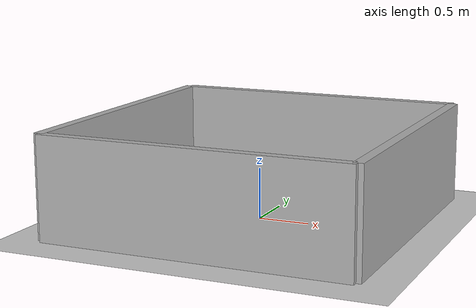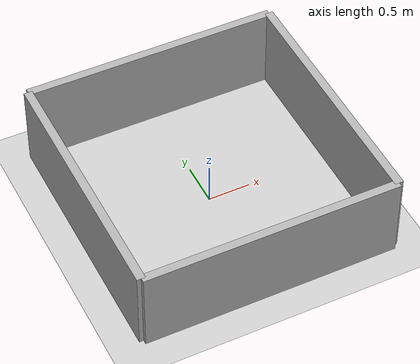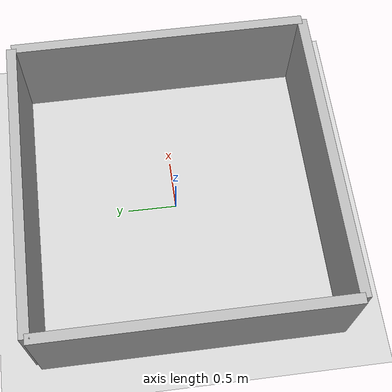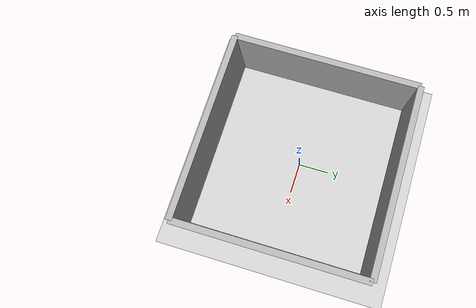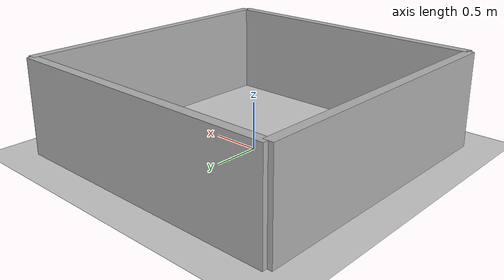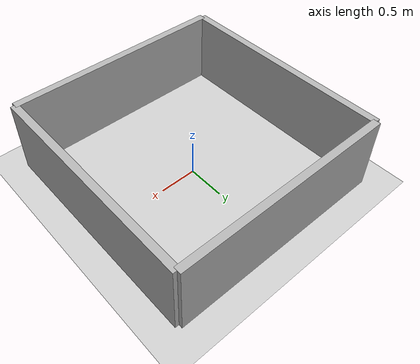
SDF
<?xml version="1.0" ?>
<sdf version="1.6">
  <world name="small_room_world">
    <!-- Set gravity and physics properties -->
    <gravity>0 0 -9.81</gravity>
    <physics type="ode">
      <real_time_update_rate>1000</real_time_update_rate>
      <max_step_size>0.001</max_step_size>
    </physics>

    <!-- Include a ground plane -->
    <include>
      <uri>model://ground_plane</uri>
    </include>

    <!-- Add walls to form a 3x3 room -->
    <model name="room_walls">
      <static>true</static>

      <!-- Wall 1: Front -->
      <link name="wall1">
        <pose>0 1.5 0.5 0 0 0</pose>
        <collision name="wall1_collision">
          <geometry>
            <box>
              <size>3 0.1 1</size>
            </box>
          </geometry>
        </collision>
        <visual name="wall1_visual">
          <geometry>
            <box>
              <size>3 0.1 1</size>
            </box>
          </geometry>
          <material>
            <ambient>0.7 0.7 0.7 1</ambient>
          </material>
        </visual>
      </link>

      <!-- Wall 2: Back -->
      <link name="wall2">
        <pose>0 -1.5 0.5 0 0 0</pose>
        <collision name="wall2_collision">
          <geometry>
            <box>
              <size>3 0.1 1</size>
            </box>
          </geometry>
        </collision>
        <visual name="wall2_visual">
          <geometry>
            <box>
              <size>3 0.1 1</size>
            </box>
          </geometry>
          <material>
            <ambient>0.7 0.7 0.7 1</ambient>
          </material>
        </visual>
      </link>

      <!-- Wall 3: Left -->
      <link name="wall3">
        <pose>-1.5 0 0.5 0 0 0</pose>
        <collision name="wall3_collision">
          <geometry>
            <box>
              <size>0.1 3 1</size>
            </box>
          </geometry>
        </collision>
        <visual name="wall3_visual">
          <geometry>
            <box>
              <size>0.1 3 1</size>
            </box>
          </geometry>
          <material>
            <ambient>0.7 0.7 0.7 1</ambient>
          </material>
        </visual>
      </link>

      <!-- Wall 4: Right -->
      <link name="wall4">
        <pose>1.5 0 0.5 0 0 0</pose>
        <collision name="wall4_collision">
          <geometry>
            <box>
              <size>0.1 3 1</size>
            </box>
          </geometry>
        </collision>
        <visual name="wall4_visual">
          <geometry>
            <box>
              <size>0.1 3 1</size>
            </box>
          </geometry>
          <material>
            <ambient>0.7 0.7 0.7 1</ambient>
          </material>
        </visual>
      </link>
    </model>

    <!-- Add a directional light -->
    <light name="sun" type="directional">
      <cast_shadows>true</cast_shadows>
      <pose>0 0 10 0 0 0</pose>
      <diffuse>1 1 1 1</diffuse>
      <specular>0.1 0.1 0.1 1</specular>
      <direction>-0.5 0.5 -1</direction>
    </light>
  </world>
</sdf>
